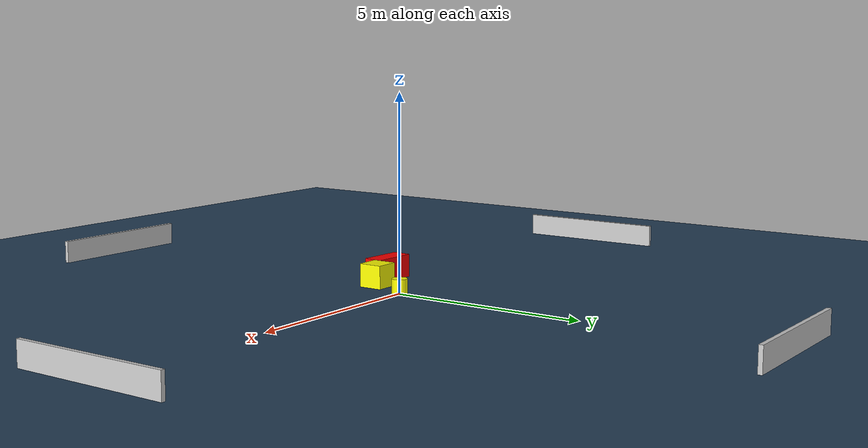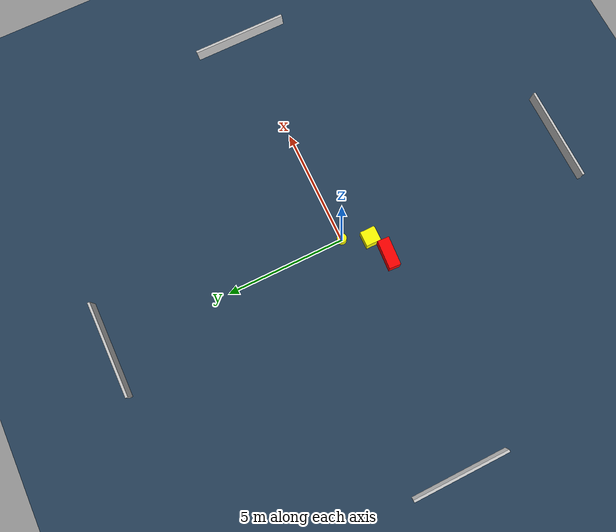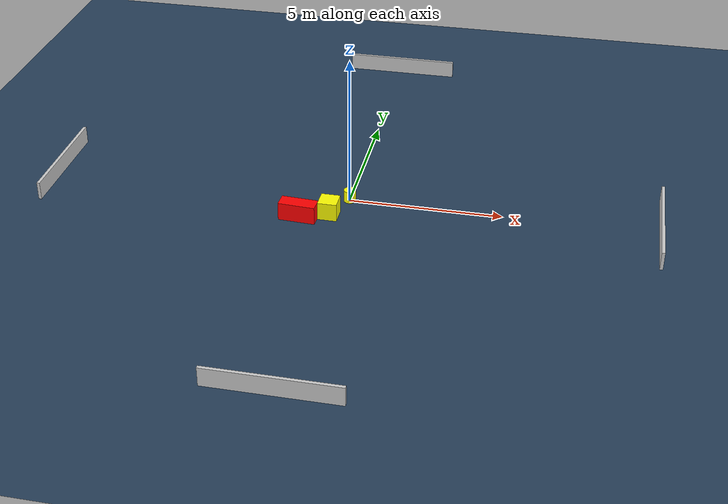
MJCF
<?xml version="1.0" ?>
<mujoco model="generated_environment">
  <option timestep="0.01" integrator="RK4" cone="elliptic"/>
  <default>
    <geom density="1"/>
  </default>
  <asset>
    <texture builtin="gradient" height="3072" name="skybox" rgb1="0.3 0.5 0.7" rgb2="0 0 0" type="skybox" width="512"/>
    <texture builtin="checker" height="300" name="groundplane" rgb1="0.2 0.3 0.4" rgb2="0.1 0.2 0.3" type="2d" width="300"/>
    <material name="groundplane" reflectance="0.2" texrepeat="5 5" texture="groundplane"/>
  </asset>
  <worldbody>
    <light dir="0 0 -1" directional="true" pos="0 0 1.5"/>
    <geom condim="3" friction="0.5 0.005 0.001" material="groundplane" name="floor" pos="0 0 0" size="0 0 0.05" type="plane"/>
    <body name="walls">
      <geom name="wall_1" condim="4" pos="-10.0 0.0 0.3" rgba="0.800000011920929 0.800000011920929 0.800000011920929 1.0" size="0.05 2.0 0.3" type="box"/>
      <geom name="wall_2" condim="4" pos="10.0 0.0 0.3" rgba="0.800000011920929 0.800000011920929 0.800000011920929 1.0" size="0.05 2.0 0.3" type="box"/>
      <geom name="wall_3" condim="4" pos="0.0 -10.0 0.3" rgba="0.800000011920929 0.800000011920929 0.800000011920929 1.0" size="2.0 0.05 0.3" type="box"/>
      <geom name="wall_4" condim="4" pos="0.0 10.0 0.3" rgba="0.800000011920929 0.800000011920929 0.800000011920929 1.0" size="2.0 0.05 0.3" type="box"/>
    </body>
    <body name="robot">
      <joint name="joint_x" type="slide" pos="0 0 0" axis="1 0 0"/>
      <joint name="joint_y" type="slide" pos="0 0 0" axis="0 1 0"/>
      <geom name="robot" type="cylinder" pos="0.0 0.0 0.2" size="0.2 0.2 0.0" mass="5.0" friction="1.0 0.005 0.0001" condim="4" rgba="1.0 1.0 0.0 1.0"/>
    </body>
    <body name="obstacle_1_movable">
      <geom name="obstacle_1_movable" condim="4" pos="-0.4710546750421348 -1.043144578601663 0.3" euler="0 0 179.77124831521346" friction="0.0 0.005 0.001" rgba="1.0 1.0 0.0 1.0" size="0.3101962904652728 0.31284740098568237 0.3" type="box" mass="0.1"/>
      <joint type="free"/>
    </body>
    <body name="obstacle_2_static">
      <geom name="obstacle_2_static" condim="4" pos="-1.3983690252540537 -1.4027568175406464 0.3" euler="0 0 266.6356908334755" friction="0.0 0.005 0.001" rgba="1.0 0.0 0.0 1.0" size="0.24618174976898816 0.6025979181162796 0.3" type="box"/>
    </body>
  </worldbody>
  <actuator>
    <motor name="actuator_x" joint="joint_x" gear="1" ctrlrange="-1 1"/>
    <motor name="actuator_y" joint="joint_y" gear="1" ctrlrange="-1 1"/>
  </actuator>
</mujoco>
